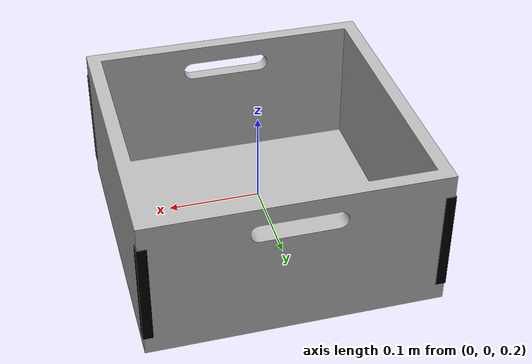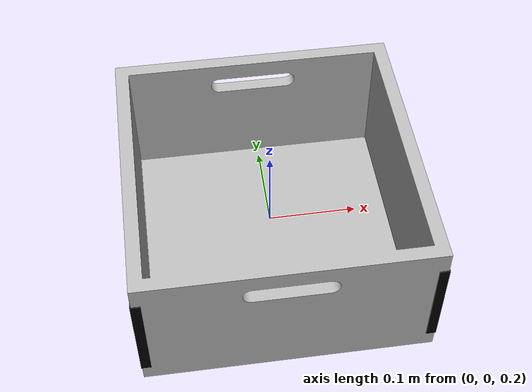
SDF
<?xml version="1.0" ?>
<sdf version="1.6">
  <model name="wooden_box">
    <pose>0 0 0.15 0 0 0</pose>
    <link name="link">
      <inertial>
        <mass>2</mass>
        <inertia>
          <ixx>0.041666667</ixx>
          <ixy>0</ixy>
          <ixz>0</ixz>
          <iyy>0.056666667</iyy>
          <iyz>0</iyz>
          <izz>0.068333333</izz>
        </inertia>
      </inertial>
      <collision name="collision_right">
      <pose>-0.153 0 0.08 0 0 0</pose>
        <geometry>

          <box>
            <size>0.015 0.31 0.16</size>
          </box>
        </geometry>

      </collision>
      <collision name="collision_base">
        <pose>0 0 0.0075 0 0 0</pose>
        <geometry>
          <box>
            <size>0.31 0.31 0.015</size>
          </box>
        </geometry>
      </collision>
      <collision name="collision_left">
        <pose>+0.153 0 0.08 0 0 0</pose>
        <geometry>
          <box>
            <size>0.015 0.31 0.16</size>
          </box>
        </geometry>
      </collision>
      <collision name="collision_front">
        <pose>+0.0 0.153 0.080 0 0 0</pose>
        <geometry>
          <box>
            <size>0.31 0.015 0.16</size>
          </box>
        </geometry>
      </collision>
      <collision name="collision_back">
        <pose>+0.0 -0.153 0.08 0 0 0</pose>
        <geometry>
          <box>
            <size>0.31 0.015 0.16</size>
          </box>
        </geometry>
      </collision>

      <visual name="visual">
        <pose>0 0 0.0 0 0 0</pose>
        <geometry>
          <mesh>
            <uri>model://wooden_box/meshes/model.dae</uri>
            <scale>1 1 1</scale>
          </mesh>
        </geometry>
      </visual>
    </link>
  </model>
</sdf>
